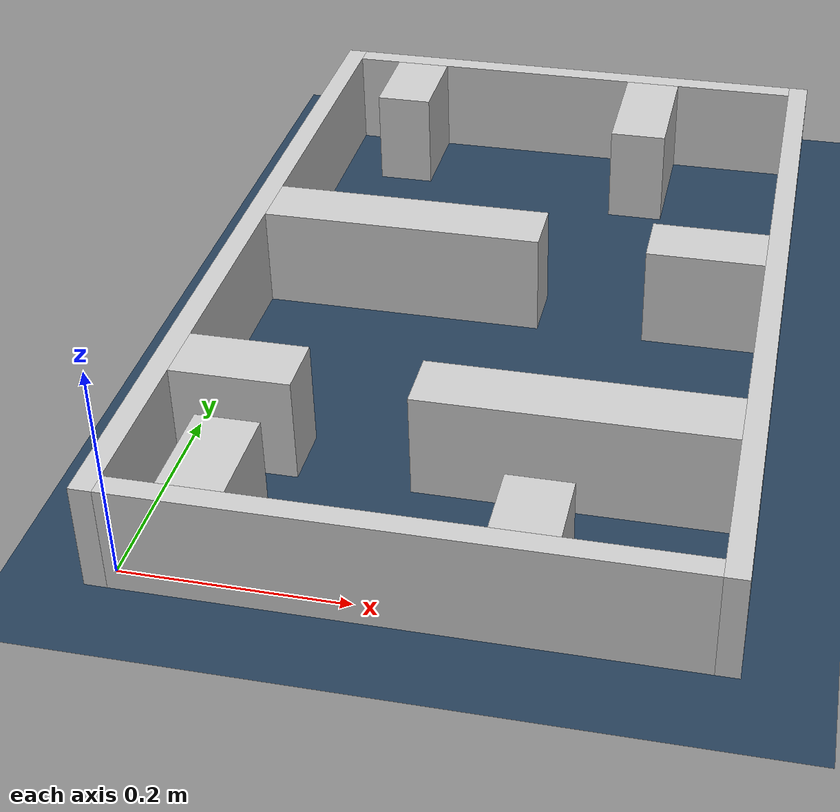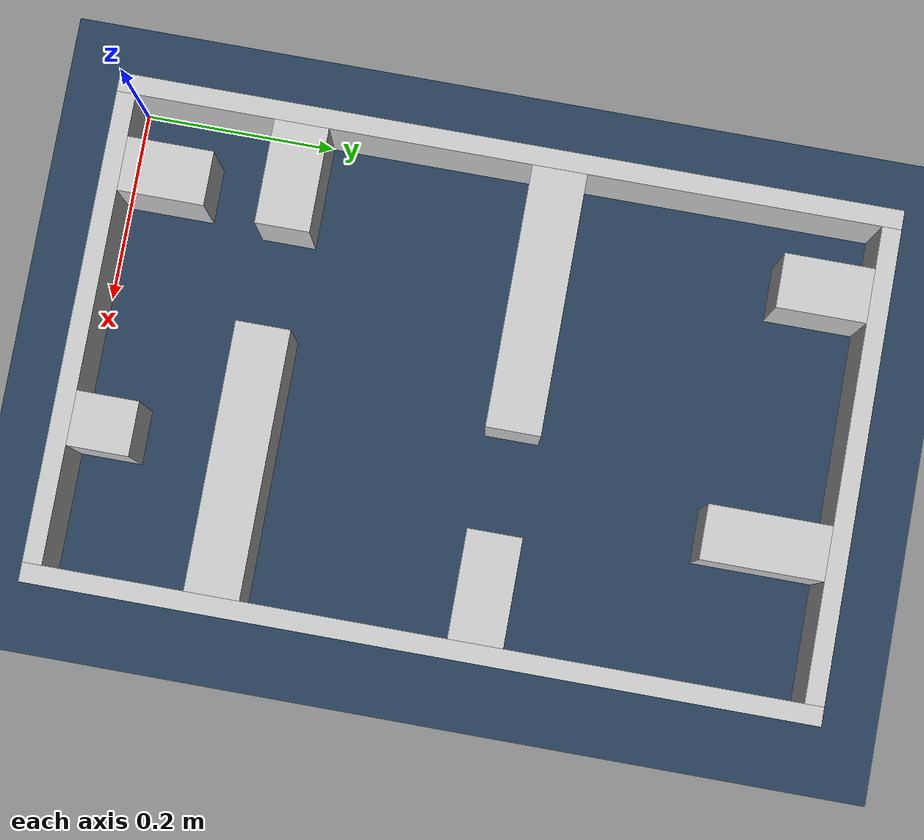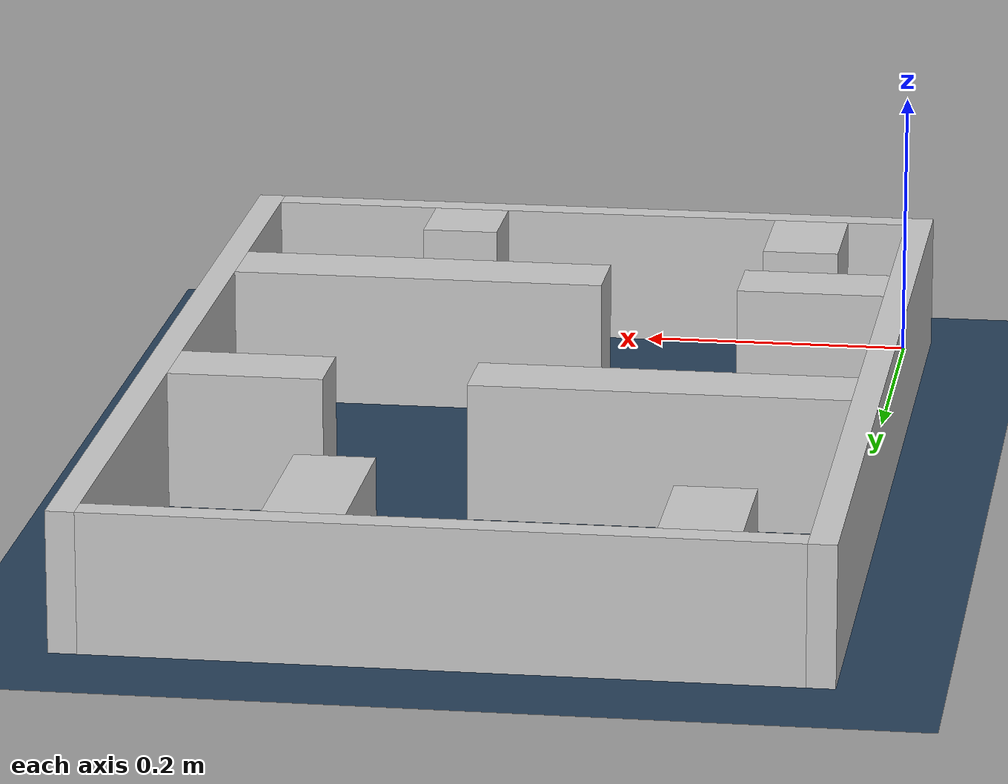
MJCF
<?xml version="1.0" ?>
<mujoco model="generated_real_template">
  <compiler angle="degree"/>
  <option timestep="0.002" integrator="implicitfast" iterations="100" cone="elliptic"/>
  <default>
    <geom density="1"/>
  </default>
  <asset>
    <texture builtin="gradient" height="3072" rgb1="0.3 0.5 0.7" rgb2="0 0 0" type="skybox" width="512"/>
    <texture builtin="checker" height="300" mark="edge" markrgb="0.8 0.8 0.8" name="groundplane" rgb1="0.2 0.3 0.4" rgb2="0.1 0.2 0.3" type="2d" width="300"/>
    <material name="groundplane" reflectance="0.2" texrepeat="5 5" texture="groundplane" texuniform="true"/>
  </asset>
  <worldbody>
    <light dir="0 0 -1" directional="true" pos="0 0 1.5"/>
    <geom name="floor" type="plane" condim="4" friction="0.5 0.005 0.001" material="groundplane" size="0 0 0.05"/>
    <body name="walls">
      <geom name="wall_boundary_left" type="box" condim="4" friction="1.0 0.005 0.0001" rgba="0.8 0.8 0.8 1" pos="-0.010000 0.387500 0.050000" euler="0 0 0.000000" size="0.010000 0.407500 0.050000"/>
      <geom name="wall_boundary_right" type="box" condim="4" friction="1.0 0.005 0.0001" rgba="0.8 0.8 0.8 1" pos="0.500000 0.387500 0.050000" euler="0 0 0.000000" size="0.010000 0.407500 0.050000"/>
      <geom name="wall_boundary_bottom" type="box" condim="4" friction="1.0 0.005 0.0001" rgba="0.8 0.8 0.8 1" pos="0.245000 -0.010000 0.050000" euler="0 0 0.000000" size="0.245000 0.010000 0.050000"/>
      <geom name="wall_boundary_top" type="box" condim="4" friction="1.0 0.005 0.0001" rgba="0.8 0.8 0.8 1" pos="0.245000 0.785000 0.050000" euler="0 0 0.000000" size="0.245000 0.010000 0.050000"/>
      <geom name="wall_inner_1_1" type="box" condim="4" friction="1.0 0.005 0.0001" rgba="0.8 0.8 0.8 1" pos="0.072814 0.045097 0.050000" euler="0 0 90.000000" size="0.045097 0.028500 0.050000"/>
      <geom name="wall_inner_1_2" type="box" condim="4" friction="1.0 0.005 0.0001" rgba="0.8 0.8 0.8 1" pos="0.072814 0.728360 0.050000" euler="0 0 90.000000" size="0.046640 0.028500 0.050000"/>
      <geom name="wall_inner_2_1" type="box" condim="4" friction="1.0 0.005 0.0001" rgba="0.8 0.8 0.8 1" pos="0.136745 0.441648 0.050000" euler="0 0 0.000000" size="0.136745 0.028500 0.050000"/>
      <geom name="wall_inner_2_2" type="box" condim="4" friction="1.0 0.005 0.0001" rgba="0.8 0.8 0.8 1" pos="0.433674 0.441648 0.050000" euler="0 0 0.000000" size="0.056326 0.028500 0.050000"/>
      <geom name="wall_inner_3_1" type="box" condim="4" friction="1.0 0.005 0.0001" rgba="0.8 0.8 0.8 1" pos="0.054759 0.173131 0.050000" euler="0 0 0.000000" size="0.054759 0.028500 0.050000"/>
      <geom name="wall_inner_3_2" type="box" condim="4" friction="1.0 0.005 0.0001" rgba="0.8 0.8 0.8 1" pos="0.350792 0.173131 0.050000" euler="0 0 0.000000" size="0.139208 0.028500 0.050000"/>
      <geom name="wall_inner_4_1" type="box" condim="4" friction="1.0 0.005 0.0001" rgba="0.8 0.8 0.8 1" pos="0.338670 0.032217 0.050000" euler="0 0 90.000000" size="0.032217 0.028500 0.050000"/>
      <geom name="wall_inner_4_2" type="box" condim="4" friction="1.0 0.005 0.0001" rgba="0.8 0.8 0.8 1" pos="0.338670 0.711336 0.050000" euler="0 0 90.000000" size="0.063664 0.028500 0.050000"/>
    </body>
  </worldbody>
</mujoco>
